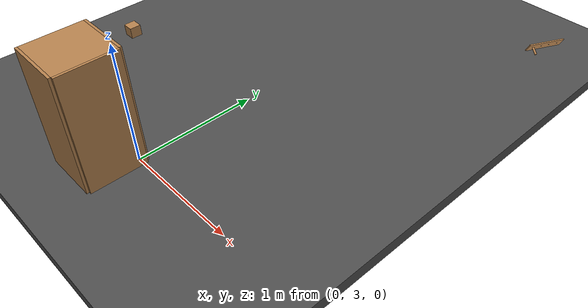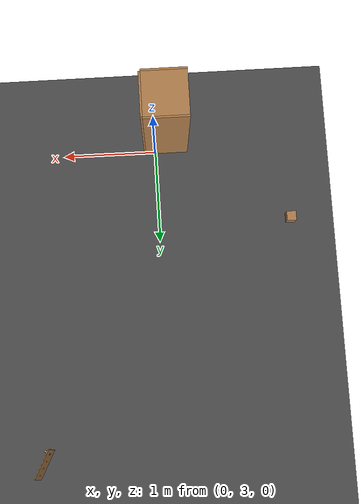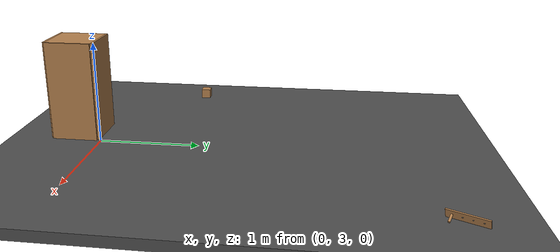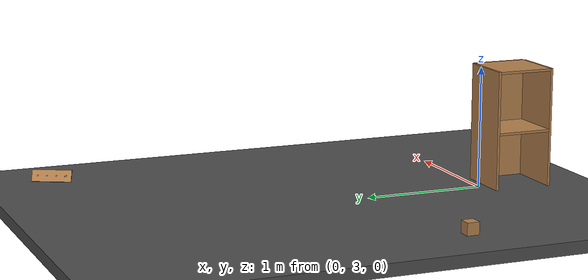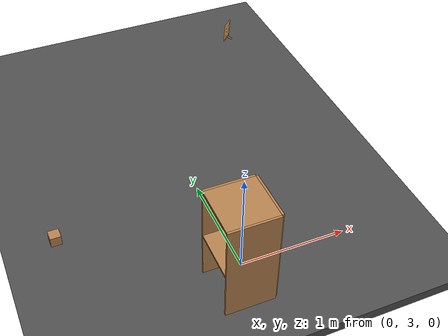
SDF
<sdf version="1.7">
 <world name="default">
  <model name="ground_plane">
   <static>1</static>
   <link name="link">
    <collision name="collision">
     <geometry><plane><normal>0 0 1</normal><size>100 100</size></plane></geometry>
     <surface>
      <contact><collide_bitmask>65535</collide_bitmask></contact>
      <friction><ode><mu>100</mu><mu2>50</mu2></ode></friction>
     </surface>
    </collision>
    <visual name="visual">
     <cast_shadows>0</cast_shadows>
     <geometry><plane><normal>0 0 1</normal><size>100 100</size></plane></geometry>
     <material>
      <script><uri>file://media/materials/scripts/gazebo.material</uri><name>Gazebo/Grey</name></script>
     </material>
    </visual>
   </link>
  </model>
  <model name="asphalt_plane">
   <static>1</static>
   <link name="link">
    <collision name="collision"><geometry><box><size>20 20 0.1</size></box></geometry></collision>
    <visual name="visual">
     <cast_shadows>0</cast_shadows>
     <geometry><box><size>20 20 0.1</size></box></geometry>
     <material>
      <script>
       <uri>model://asphalt_plane/materials/scripts</uri>
       <uri>model://asphalt_plane/materials/textures</uri>
       <name>vrc/asphalt</name>
      </script>
     </material>
    </visual>
   </link>
   <pose>0.032164 -0.016772 0 0 -0 0</pose>
  </model>
  <model name="wooden_peg_board">
   <frame name="wooden_board::__model__" attached_to="wooden_board::base">
    <pose relative_to="__model__">0 0 0 0 -0 0</pose>
   </frame>
   <link name="wooden_board::base">
    <pose relative_to="wooden_board::__model__">0 0 0.00523 0 -0 0</pose>
    <inertial>
     <mass>0.2765</mass>
     <inertia>
      <ixx>0.0025148</ixx>
      <ixy>0</ixy>
      <ixz>0</ixz>
      <iyy>0.00024037</iyy>
      <iyz>0</iyz>
      <izz>0.00275013</izz>
     </inertia>
    </inertial>
    <collision name="collision">
     <geometry><box><size>0.1016 0.3302 0.01046</size></box></geometry>
     <surface>
      <contact>
       <poissons_ratio>0.347</poissons_ratio>
       <elastic_modulus>8.8e+09</elastic_modulus>
       <ode><kp>100000</kp><kd>100</kd><max_vel>100</max_vel><min_depth>0.001</min_depth></ode>
      </contact>
      <friction>
       <torsional>
        <coefficient>1</coefficient>
        <use_patch_radius>0</use_patch_radius>
        <surface_radius>0.01</surface_radius>
       </torsional>
      </friction>
     </surface>
    </collision>
    <visual name="visual">
     <geometry><box><size>0.1016 0.3302 0.01046</size></box></geometry>
     <material>
      <script><uri>file://media/materials/scripts/gazebo.material</uri><name>Gazebo/Wood</name></script>
     </material>
    </visual>
    <visual name="tee_nut_1">
     <pose>0 -0.116 0 0 -0 0</pose>
     <geometry><cylinder><radius>0.00635</radius><length>0.0105646</length></cylinder></geometry>
     <material>
      <script><uri>file://media/materials/scripts/gazebo.material</uri><name>Gazebo/Grey</name></script>
     </material>
    </visual>
    <visual name="tee_nut_2">
     <pose>0 -0.038 0 0 -0 0</pose>
     <geometry><cylinder><radius>0.00635</radius><length>0.0105646</length></cylinder></geometry>
     <material>
      <script><uri>file://media/materials/scripts/gazebo.material</uri><name>Gazebo/Grey</name></script>
     </material>
    </visual>
    <visual name="tee_nut_3">
     <pose>0 0.038 0 0 -0 0</pose>
     <geometry><cylinder><radius>0.00635</radius><length>0.0105646</length></cylinder></geometry>
     <material>
      <script><uri>file://media/materials/scripts/gazebo.material</uri><name>Gazebo/Grey</name></script>
     </material>
    </visual>
    <visual name="tee_nut_4">
     <pose>0 0.116 0 0 -0 0</pose>
     <geometry><cylinder><radius>0.00635</radius><length>0.0105646</length></cylinder></geometry>
     <material>
      <script><uri>file://media/materials/scripts/gazebo.material</uri><name>Gazebo/Grey</name></script>
     </material>
    </visual>
   </link>
   <frame name="peg::__model__" attached_to="peg::link">
    <pose relative_to="__model__">0 0.116 0 0 -0 0</pose>
   </frame>
   <link name="peg::link">
    <pose relative_to="peg::__model__">0 0 0.04 0 -0 0</pose>
    <inertial>
     <mass>0.0175</mass>
     <inertia>
      <ixx>9.74923e-06</ixx>
      <ixy>0</ixy>
      <ixz>0</ixz>
      <iyy>9.74923e-06</iyy>
      <iyz>0</iyz>
      <izz>8.31797e-07</izz>
     </inertia>
    </inertial>
    <collision name="collision">
     <geometry><cylinder><radius>0.00975</radius><length>0.08</length></cylinder></geometry>
     <surface>
      <contact>
       <poissons_ratio>0.347</poissons_ratio>
       <elastic_modulus>8.8e+09</elastic_modulus>
       <ode><kp>100000</kp><kd>100</kd><max_vel>100</max_vel><min_depth>0.001</min_depth></ode>
      </contact>
      <friction>
       <torsional>
        <coefficient>1</coefficient>
        <use_patch_radius>0</use_patch_radius>
        <surface_radius>0.01</surface_radius>
       </torsional>
      </friction>
     </surface>
    </collision>
    <visual name="visual">
     <geometry><cylinder><radius>0.00975</radius><length>0.08</length></cylinder></geometry>
     <material>
      <script><uri>file://media/materials/scripts/gazebo.material</uri><name>Gazebo/Wood</name></script>
     </material>
    </visual>
   </link>
   <joint name="board_peg" type="revolute">
    <parent>wooden_board::base</parent>
    <child>peg::link</child>
    <axis>
     <xyz>0 0 1</xyz>
     <limit><upper>0</upper><lower>0</lower></limit>
     <dynamics><spring_reference>0</spring_reference><spring_stiffness>0</spring_stiffness></dynamics>
    </axis>
   </joint>
   <pose>1.30096 6.27041 0.098054 3.14156 -1.03754 -0.468475</pose>
  </model>
  <model name="wood_cube_10cm">
   <link name="link">
    <pose>0 0 0.05 0 -0 0</pose>
    <inertial>
     <mass>0.5167</mass>
     <inertia>
      <ixx>0.000861167</ixx>
      <ixy>0</ixy>
      <ixz>0</ixz>
      <iyy>0.000861167</iyy>
      <iyz>0</iyz>
      <izz>0.000861167</izz>
     </inertia>
    </inertial>
    <collision name="collision">
     <geometry><box><size>0.1 0.1 0.1</size></box></geometry>
     <surface>
      <contact>
       <poissons_ratio>0.347</poissons_ratio>
       <elastic_modulus>8.8e+09</elastic_modulus>
       <ode><kp>100000</kp><kd>100</kd><max_vel>100</max_vel><min_depth>0.001</min_depth></ode>
      </contact>
      <friction>
       <torsional>
        <coefficient>1</coefficient>
        <use_patch_radius>0</use_patch_radius>
        <surface_radius>0.01</surface_radius>
       </torsional>
      </friction>
     </surface>
    </collision>
    <visual name="visual">
     <geometry><box><size>0.1 0.1 0.1</size></box></geometry>
     <material>
      <script><uri>file://media/materials/scripts/gazebo.material</uri><name>Gazebo/Wood</name></script>
     </material>
    </visual>
   </link>
   <pose>-1.41532 3.82471 0.048987 0 -0 0</pose>
  </model>
  <model name="cabinet_5">
   <static>1</static>
   <link name="cabinet_bottom_plate">
    <inertial>
     <pose>0 0 -1 0 -0 0</pose>
     <inertia><ixx>2.05</ixx><ixy>0</ixy><ixz>0</ixz><iyy>2.05</iyy><iyz>0</iyz><izz>2.05</izz></inertia>
     <mass>25</mass>
    </inertial>
    <collision name="cabinet_bottom_plate_geom">
     <pose>0 0 0.01 0 -0 0</pose>
     <geometry><box><size>0.45 0.45 0.02</size></box></geometry>
    </collision>
    <visual name="cabinet_bottom_plate_geom_visual">
     <pose>0 0 0.01 0 -0 0</pose>
     <geometry><box><size>0.45 0.45 0.02</size></box></geometry>
     <material>
      <script><uri>file://media/materials/scripts/gazebo.material</uri><name>Gazebo/Wood</name></script>
     </material>
    </visual>
    <collision name="cabinet_bottom_plate_geom_cabinet_back_plate">
     <pose>0.235 0 0.51 0 -0 0</pose>
     <geometry><box><size>0.02 0.45 1.02</size></box></geometry>
    </collision>
    <visual name="cabinet_bottom_plate_geom_cabinet_back_plate_visual">
     <pose>0.235 0 0.51 0 -0 0</pose>
     <geometry><box><size>0.02 0.45 1.02</size></box></geometry>
     <material>
      <script><uri>file://media/materials/scripts/gazebo.material</uri><name>Gazebo/Wood</name></script>
     </material>
    </visual>
    <collision name="cabinet_bottom_plate_geom_cabinet_left_plate">
     <pose>0 0.235 0.51 0 -0 0</pose>
     <geometry><box><size>0.45 0.02 1.02</size></box></geometry>
    </collision>
    <visual name="cabinet_bottom_plate_geom_cabinet_left_plate_visual">
     <pose>0 0.235 0.51 0 -0 0</pose>
     <geometry><box><size>0.45 0.02 1.02</size></box></geometry>
     <material>
      <script><uri>file://media/materials/scripts/gazebo.material</uri><name>Gazebo/Wood</name></script>
     </material>
    </visual>
    <collision name="cabinet_bottom_plate_geom_cabinet_middle_plate">
     <pose>0 0 0.51 0 -0 0</pose>
     <geometry><box><size>0.45 0.45 0.02</size></box></geometry>
    </collision>
    <visual name="cabinet_bottom_plate_geom_cabinet_middle_plate_visual">
     <pose>0 0 0.51 0 -0 0</pose>
     <geometry><box><size>0.45 0.45 0.02</size></box></geometry>
     <material>
      <script><uri>file://media/materials/scripts/gazebo.material</uri><name>Gazebo/Wood</name></script>
     </material>
    </visual>
    <collision name="cabinet_bottom_plate_geom_cabinet_right_plate">
     <pose>0 -0.235 0.51 0 -0 0</pose>
     <geometry><box><size>0.45 0.02 1.02</size></box></geometry>
    </collision>
    <visual name="cabinet_bottom_plate_geom_cabinet_right_plate_visual">
     <pose>0 -0.235 0.51 0 -0 0</pose>
     <geometry><box><size>0.45 0.02 1.02</size></box></geometry>
     <material>
      <script><uri>file://media/materials/scripts/gazebo.material</uri><name>Gazebo/Wood</name></script>
     </material>
    </visual>
    <collision name="cabinet_bottom_plate_geom_cabinet_top_plate">
     <pose>0 0 1.01 0 -0 0</pose>
     <geometry><box><size>0.45 0.45 0.02</size></box></geometry>
    </collision>
    <visual name="cabinet_bottom_plate_geom_cabinet_top_plate_visual">
     <pose>0 0 1.01 0 -0 0</pose>
     <geometry><box><size>0.45 0.45 0.02</size></box></geometry>
     <material>
      <script><uri>file://media/materials/scripts/gazebo.material</uri><name>Gazebo/Wood</name></script>
     </material>
    </visual>
   </link>
   <pose>-0.125436 2.78161 0 0 -0 0</pose>
  </model>
 </world>
</sdf>
